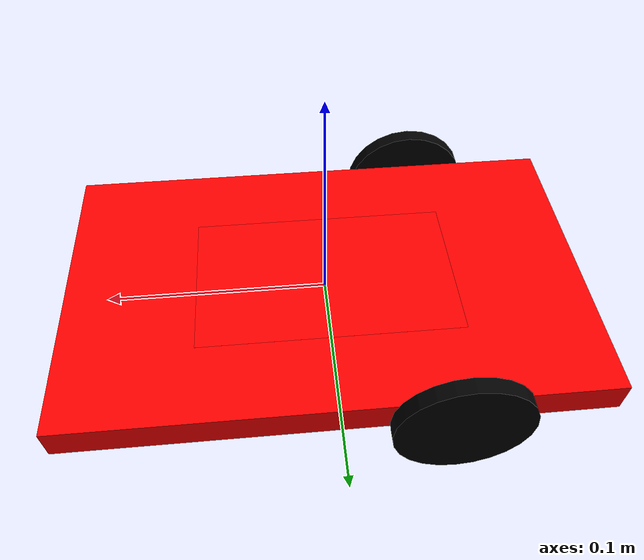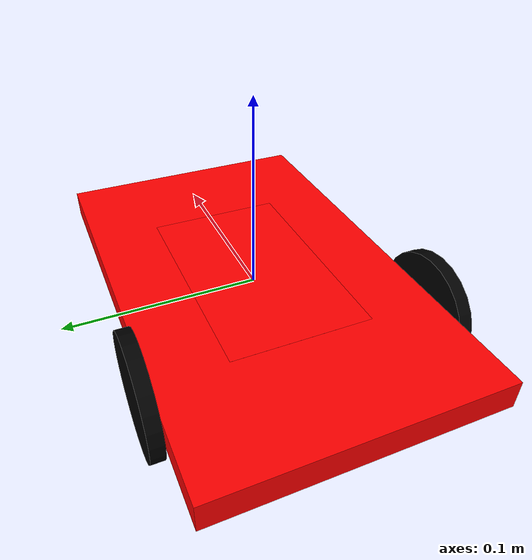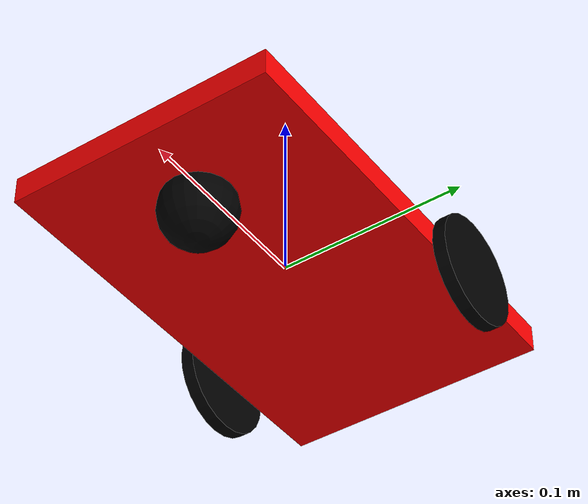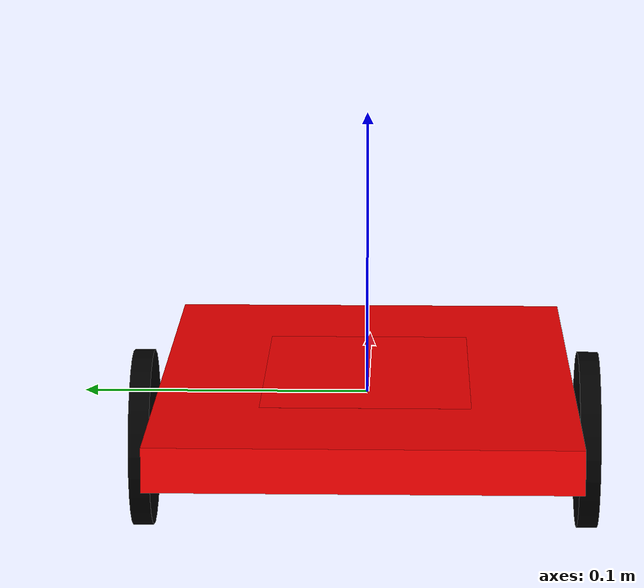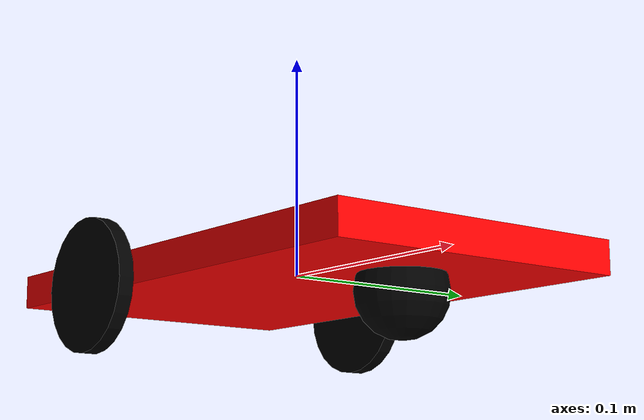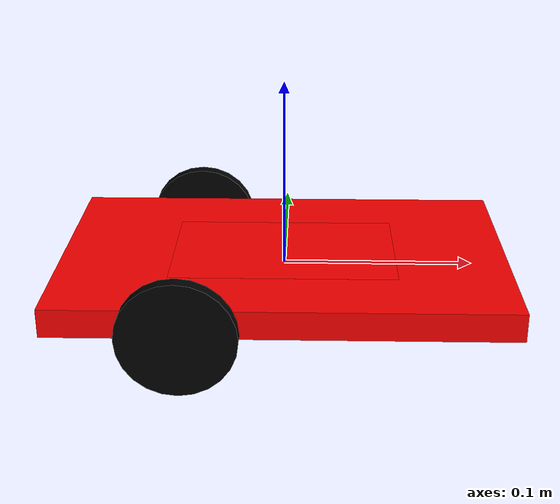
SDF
<?xml version='1.0'?>
<sdf version='1.5'>
  <model name='me439_robot'>
    <static>false</static>

  <!-- ********************** ROBOT BASE *********************************  -->
    <link name='chassis'>
      <collision name='collision'>
        <pose>0 0 .1 0 0 0</pose>
        <geometry>
          <box>
            <size>.235 .144 .015</size> <!-- body length -->
          </box>
        </geometry>
      </collision>

      <visual name='visual'>
        <geometry>
          <box>
            <size>.235 .144 .015</size>
          </box>
        </geometry>
        <material>
          <ambient>1.0 0.0 0.0 1.0</ambient>
          <diffuse>1.0 0.0 0.0 1.0</diffuse>
          <specular>0.0 0.0 0.0 1.0</specular>
          <emissive>0.0 0.0 0.0 1.0</emissive>
        </material>
      </visual>
    </link>

      <link name='picture'>
        <pose relative_to="chassis">0 0 0.0075 0 0 0</pose>
        <collision name='collision'>
          <geometry>
            <box>
              <size>.144 .144 1e-5</size> <!-- body length -->
            </box>
          </geometry>
        </collision>

        <visual name='visual'>
          <geometry>
            <box>
              <size>.1175 .072 1e-5</size>
            </box>
          </geometry>
          <material>
              <script>
                <uri>model://mobrob/materials/scripts</uri>
                <uri>model://mobrob/materials/textures</uri>
                <name>uwm</name>
              </script>
              <ambient>1.0 0.0 0.0 1.0</ambient>
              <diffuse>1.0 0.0 0.0 1.0</diffuse>
              <specular>0.0 0.0 0.0 1.0</specular>
              <emissive>0.0 0.0 0.0 1.0</emissive>
          </material>
        </visual>

    </link>
    <link name='front_caster'>
      <pose relative_to="chassis">0.07 0 -0.015 0 0 0</pose>
      <inertial>
        <inertia>
          <ixx>0.001</ixx>
          <ixy>0.000</ixy>
          <ixz>0.000</ixz>
          <iyy>0.001</iyy>
          <iyz>0.000</iyz>
          <izz>0.001</izz>
        </inertia>
        <mass>20.0</mass>
      </inertial>
      <collision name='caster_collision'>
        <geometry>
            <sphere>
            <radius>.02</radius>
          </sphere>
        </geometry>

        <surface>
          <friction>
            <ode>
              <mu>0.00</mu>
              <mu2>0.00</mu2>
              <slip1>1.0</slip1>
              <slip2>1.0</slip2>
            </ode>
          </friction>
        </surface>
      </collision>

      <visual name='caster_visual'>
        <geometry>
          <sphere>
            <radius>.02</radius>
          </sphere>
        </geometry>
        <material>
          <ambient>0.0 0.0 0.0 1.0</ambient>
          <diffuse>0.0 0.0 0.0 1.0</diffuse>
          <specular>0.0 0.0 0.0 1.0</specular>
          <emissive>0.0 0.0 0.0 1.0</emissive>
        </material>
      </visual>

    </link>

    <link name="left_wheel">
      <pose relative_to="chassis">-0.05 0.0755 -0.005 0 1.5707 1.5707</pose>
      <inertial>
        <inertia>
          <ixx>0.001</ixx>
          <ixy>0.000</ixy>
          <ixz>0.000</ixz>
          <iyy>0.001</iyy>
          <iyz>0.000</iyz>
          <izz>0.001</izz>
        </inertia>
        <mass>5.0</mass>
      </inertial>

      <collision name="collision">
        <geometry>
          <cylinder>
            <radius>.03</radius>
            <length>.007</length>
          </cylinder>
        </geometry>
      </collision>
      <visual name="visual">
        <geometry>
          <cylinder>
            <radius>.03</radius>
            <length>.007</length>
          </cylinder>
        </geometry>
        <material>
          <ambient>0.0 0.0 0.0 1.0</ambient>
          <diffuse>0.0 0.0 0.0 1.0</diffuse>
          <specular>0.0 0.0 0.0 1.0</specular>
          <emissive>0.0 0.0 0.0 1.0</emissive>
        </material>
      </visual>
    </link>

    <link name="right_wheel">
      <pose relative_to="chassis">-0.05 -0.0755 -0.005 0 1.5707 1.5707</pose>
      <inertial>
        <inertia>
          <ixx>0.001</ixx>
          <ixy>0.000</ixy>
          <ixz>0.000</ixz>
          <iyy>0.001</iyy>
          <iyz>0.000</iyz>
          <izz>0.001</izz>
        </inertia>
        <mass>5.0</mass>
      </inertial>
      <collision name="collision">
        <geometry>
          <cylinder>
            <radius>.03</radius>
            <length>.007</length>
          </cylinder>
        </geometry>
      </collision>
      <visual name="visual">
        <geometry>
          <cylinder>
            <radius>.03</radius>
            <length>.007</length>
          </cylinder>
        </geometry>
        <material>
          <ambient>0.0 0.0 0.0 1.0</ambient>
          <diffuse>0.0 0.0 0.0 1.0</diffuse>
          <specular>0.0 0.0 0.0 1.0</specular>
          <emissive>0.0 0.0 0.0 1.0</emissive>
        </material>
      </visual>
    </link>

<!-- *********************** IMU SENSOR SETUP **************************  -->
  <link name="imu_link">
    <gravity>true</gravity>
    <sensor name="twr_imu" type="imu">
      <always_on>true</always_on>
      <update_rate>100</update_rate>
      <visualize>true</visualize>
      <imu>
        <orientation>
          <x>
            <noise type="gaussian">
              <mean>0.0</mean>
              <stddev>2e-3</stddev>
            </noise>
          </x>
          <y>
            <noise type="gaussian">
              <mean>0.0</mean>
              <stddev>2e-3</stddev>
            </noise>
          </y>
          <z>
            <noise type="gaussian">
              <mean>0.0</mean>
              <stddev>2e-3</stddev>
            </noise>
          </z>
        </orientation>
        <angular_velocity>
          <x>
            <noise type="gaussian">
              <mean>0.0</mean>
              <stddev>2e-4</stddev>
            </noise>
          </x>
          <y>
            <noise type="gaussian">
              <mean>0.0</mean>
              <stddev>2e-4</stddev>
            </noise>
          </y>
          <z>
            <noise type="gaussian">
              <mean>0.0</mean>
              <stddev>2e-4</stddev>
            </noise>
          </z>
        </angular_velocity>
        <linear_acceleration>
          <x>
            <noise type="gaussian">
              <mean>0.0</mean>
              <stddev>1.7e-2</stddev>
            </noise>
          </x>
          <y>
            <noise type="gaussian">
              <mean>0.0</mean>
              <stddev>1.7e-2</stddev>
            </noise>
          </y>
          <z>
            <noise type="gaussian">
              <mean>0.0</mean>
              <stddev>1.7e-2</stddev>
            </noise>
          </z>
        </linear_acceleration>
      </imu>
      <plugin name="two_wheeled_robot_imu" filename="libgazebo_ros_imu_sensor.so">
        <initial_orientation_as_reference>false</initial_orientation_as_reference>
        <frame_name>imu_link</frame_name>
        <ros>
          <namespace>/imu</namespace>
          <remapping>~/out:=data</remapping>
        </ros>
      </plugin>
    </sensor>
  </link>

  <!-- *********************** CAMERA SENSOR SETUP **************************  -->

  <link name="camera_link">
    <sensor type="camera" name="mobrob_cam">
      <update_rate>50.0</update_rate>
      <camera name="head">
          <horizontal_fov>0.96</horizontal_fov>
          <image>
              <width>960</width>
              <height>720</height>
              <format>R8G8B8</format>
          </image>
          <clip>
              <near>0.1</near>
              <far>300</far>
          </clip>
          <noise>
              <type>gaussian</type>
              <mean>0.0</mean>
              <stddev>0.007</stddev>
          </noise>
      </camera>
      <plugin name="mobrob_camera" filename="libgazebo_ros_camera.so">
          <alwaysOn>true</alwaysOn>
          <updateRate>0.0</updateRate>
          <cameraName>this_is_ignored</cameraName>
          <imageTopicName>image_raw</imageTopicName>
          <cameraInfoTopicName>camera_info</cameraInfoTopicName>
          <frameName>camera_link</frameName>
          <hackBaseline>0.07</hackBaseline>
          <distortionK1>0.0</distortionK1>
          <distortionK2>0.0</distortionK2>
          <distortionK3>0.0</distortionK3>
          <distortionT1>0.0</distortionT1>
          <distortionT2>0.0</distortionT2>
      </plugin>
  </sensor>
</link>

    <!-- ************************ JOINTS ***********************************  -->

    <joint name='picture_joint' type='fixed'>
      <parent>chassis</parent>
      <child>picture</child>
      <pose>0 0 0 0 0 0</pose>
    </joint>

    <joint name='caster_joint' type='fixed'>
      <parent>chassis</parent>
      <child>front_caster</child>
      <pose>0 0 0 0 0 0</pose>
    </joint>

    <joint name="left_wheel_hinge" type="revolute" >
      <pose>0 0 0.0 0 0 0</pose>
      <child>left_wheel</child>
      <parent>chassis</parent>
      <axis>
        <xyz>0 0 1</xyz>
      </axis>
    </joint>

    <joint name="right_wheel_hinge" type="revolute">
      <pose>0 0 0.0 0 0 0</pose>
      <child>right_wheel</child>
      <parent>chassis</parent>
      <axis>
        <xyz>0 0 1</xyz>
      </axis>
    </joint>

    <joint name="imu_joint" type="fixed">
      <parent>chassis</parent>
      <child>imu_link</child>
      <pose>0 0 0 0 0 0</pose>
    </joint>

    <joint name="camera_joint" type="fixed">
      <parent>chassis</parent>
      <child>camera_link</child>
      <pose>0 0 0 0 0 0</pose>
    </joint>

     <!-- *********************** JOINT STATE PUBLISHER *********************   -->

    <plugin name="mobrob_joint_state" filename="libgazebo_ros_joint_state_publisher.so">
      <ros>
        <remapping>~/out:=joint_states</remapping>
      </ros>
      <update_rate>30</update_rate>
      <joint_name>left_wheel_hinge</joint_name>
      <joint_name>right_wheel_hinge</joint_name>
    </plugin>

     <!-- *********************** WHEEL ODOMETRY ***************************    -->

    <plugin filename="libgazebo_ros_diff_drive.so" name="model_diff_drive_plugin">
      <ros>
        <namespace>/mobrob</namespace>
      </ros>
      <update_rate>15</update_rate>

      <!-- kinematics -->
      <wheel_separation>0.151</wheel_separation>
      <wheel_diameter>0.06</wheel_diameter>
      <!-- wheels -->
      <left_joint>left_wheel_hinge</left_joint>
      <right_joint>right_wheel_hinge</right_joint>
      <!-- output -->
      <publish_odom>true</publish_odom>
      <publish_odom_tf>true</publish_odom_tf>
      <publish_wheel_tf>true</publish_wheel_tf>

    </plugin>
  </model>
</sdf>
